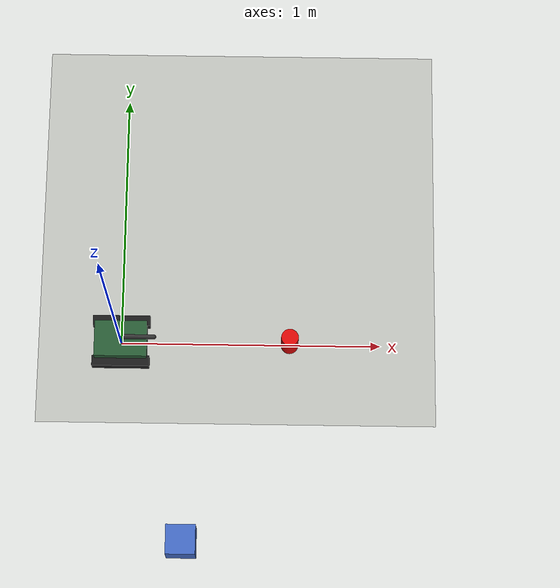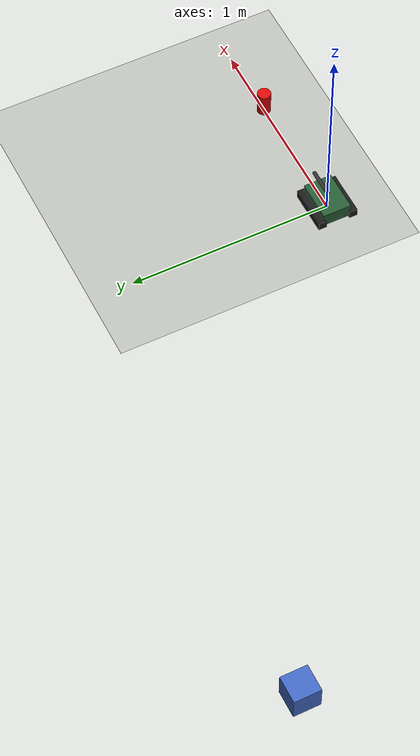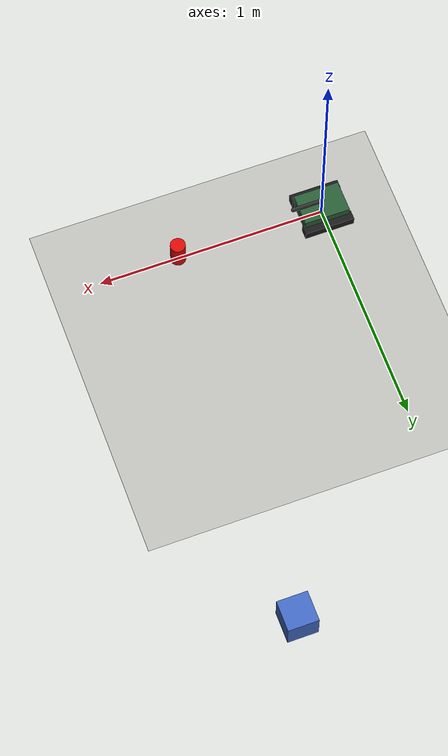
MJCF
<mujoco model="AI-Driven Mini-T toy shooting prototype">
  <option timestep="0.002" gravity="0 0 -9.81"/>
  <visual><global offwidth="640" offheight="360"/><map znear="0.01"/></visual>
  <default><geom friction="0.6 0.01 0.001" condim="3"/></default>
  <worldbody>
    <light pos="0 0 3" diffuse="0.9 0.9 0.9"/>
    <geom name="floor" type="plane" size="4 4 0.1" rgba="0.5 0.5 0.45 1"/>
    <body name="tank" mocap="true" pos="0 0 0.045">
      <geom type="box" size="0.10 0.07 0.035" rgba="0.15 0.35 0.2 1"/>
      <geom type="box" pos="0 0.08 -0.02" size="0.11 0.02 0.02" rgba="0.1 0.1 0.1 1"/>
      <geom type="box" pos="0 -0.08 -0.02" size="0.11 0.02 0.02" rgba="0.1 0.1 0.1 1"/>
      <body name="launcher" pos="0 0 0.055">
        <geom type="capsule" fromto="0 0 0 0.13 0 0" size="0.009" rgba="0.2 0.2 0.2 1"/>
      </body>
      <camera name="rover" pos="0.10 0 0.03" xyaxes="0 -1 0 0 0 1" fovy="55"/>
    </body>
    <geom name="obstacle_0" type="box" pos="0 0 -5" size="0.1 0.1 0.1" rgba="0.25 0.4 0.75 1"/>
    <geom name="obstacle_1" type="box" pos="0 0 -5" size="0.1 0.1 0.1" rgba="0.25 0.4 0.75 1"/>
    <geom name="obstacle_2" type="box" pos="0 0 -5" size="0.1 0.1 0.1" rgba="0.25 0.4 0.75 1"/>
    <geom name="obstacle_3" type="box" pos="0 0 -5" size="0.1 0.1 0.1" rgba="0.25 0.4 0.75 1"/>
    <geom name="obstacle_4" type="box" pos="0 0 -5" size="0.1 0.1 0.1" rgba="0.25 0.4 0.75 1"/>
    <geom name="obstacle_5" type="box" pos="0 0 -5" size="0.1 0.1 0.1" rgba="0.25 0.4 0.75 1"/>
    <geom name="obstacle_6" type="box" pos="0 0 -5" size="0.1 0.1 0.1" rgba="0.25 0.4 0.75 1"/>
    <geom name="obstacle_7" type="box" pos="0 0 -5" size="0.1 0.1 0.1" rgba="0.25 0.4 0.75 1"/>
    <geom name="obstacle_8" type="box" pos="0 0 -5" size="0.1 0.1 0.1" rgba="0.25 0.4 0.75 1"/>
    <geom name="obstacle_9" type="box" pos="0 0 -5" size="0.1 0.1 0.1" rgba="0.25 0.4 0.75 1"/>
    <geom name="obstacle_10" type="box" pos="0 0 -5" size="0.1 0.1 0.1" rgba="0.25 0.4 0.75 1"/>
    <geom name="obstacle_11" type="box" pos="0 0 -5" size="0.1 0.1 0.1" rgba="0.25 0.4 0.75 1"/>
    <body name="can" pos="0.65 0 0.061">
      <freejoint name="can_free"/>
      <geom name="can_geom" type="cylinder" size="0.033 0.06" mass="0.025" rgba="0.85 0.03 0.025 1"/>
      <geom name="can_top" type="cylinder" pos="0 0 0.059" size="0.033 0.001" mass="0.001" rgba="0.7 0.7 0.7 1"/>
      <geom name="can_bottom" type="cylinder" pos="0 0 -0.059" size="0.033 0.001" mass="0.001" rgba="0.7 0.7 0.7 1"/>
    </body>
    <body name="projectile" pos="0 0 -5">
      <freejoint name="projectile_free"/>
      <geom name="projectile_geom" type="sphere" size="0.008" mass="0.004" rgba="1 0.8 0.1 1"/>
    </body>
  </worldbody>
</mujoco>
